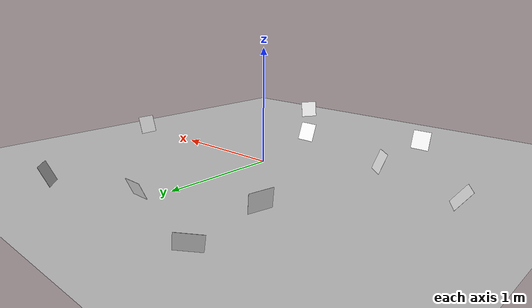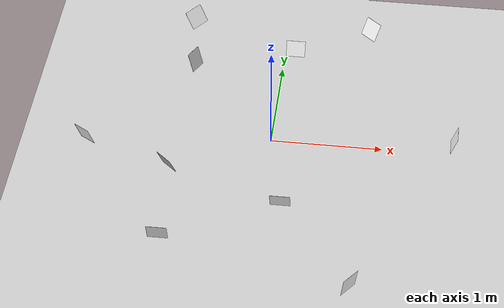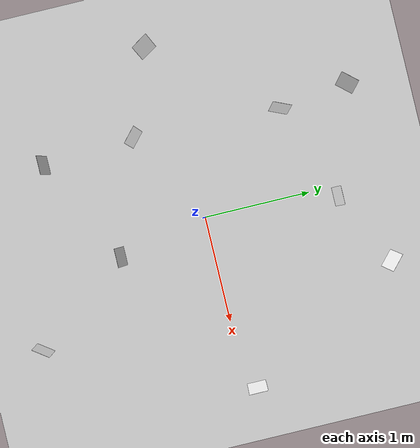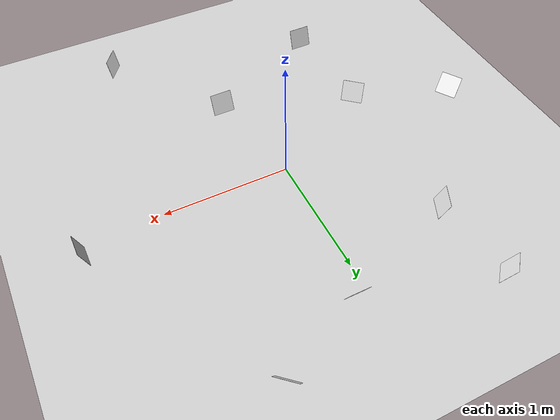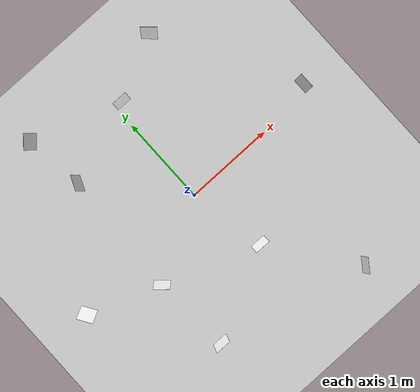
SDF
<sdf version="1.7">
 <world name="default">
  <physics name="normal" type="ode">
   <real_time_update_rate>1000</real_time_update_rate>
   <max_step_size>0.001</max_step_size>
   <real_time_factor>1</real_time_factor>
  </physics>
  <model name="ground_plane">
   <static>1</static>
   <link name="link">
    <collision name="collision">
     <geometry><plane><normal>0 0 1</normal><size>100 100</size></plane></geometry>
     <surface>
      <contact><collide_bitmask>65535</collide_bitmask></contact>
      <friction><ode><mu>100</mu><mu2>50</mu2></ode></friction>
     </surface>
    </collision>
    <visual name="visual">
     <cast_shadows>0</cast_shadows>
     <geometry><plane><normal>0 0 1</normal><size>100 100</size></plane></geometry>
     <material>
      <script><uri>file://media/materials/scripts/gazebo.material</uri><name>Gazebo/Grey</name></script>
     </material>
    </visual>
   </link>
  </model>
  <light name="sun" type="directional">
   <pose>0 0 10 0 -0 0</pose>
   <diffuse>0.8 0.8 0.8 1</diffuse>
   <specular>0.2 0.2 0.2 1</specular>
   <attenuation>
    <range>1000</range>
    <constant>0.9</constant>
    <linear>0.01</linear>
    <quadratic>0.001</quadratic>
   </attenuation>
   <direction>-0.5 0.1 -0.9</direction>
   <spot><inner_angle>0</inner_angle><outer_angle>0</outer_angle><falloff>0</falloff></spot>
  </light>
  <gravity>0 0 -9.8</gravity>
  <magnetic_field>6e-06 2.3e-05 -4.2e-05</magnetic_field>
  <atmosphere type="adiabatic"/>
  <scene><ambient>0.4 0.4 0.4 1</ambient><background>0.7 0.7 0.7 1</background><shadows>1</shadows></scene>
  <spherical_coordinates>
   <surface_model>EARTH_WGS84</surface_model>
   <latitude_deg>0</latitude_deg>
   <longitude_deg>0</longitude_deg>
   <elevation>0</elevation>
   <heading_deg>0</heading_deg>
  </spherical_coordinates>
  <model name="marker_28">
   <link name="marker">
    <visual name="visual">
     <geometry><box><size>0.1778 0.1778 1e-05</size></box></geometry>
     <material>
      <script>
       <uri>model://marker_28/materials/scripts</uri>
       <uri>model://marker_28/materials/textures</uri>
       <name>ArucoVisualMarker28/Marker</name>
      </script>
      <ambient>1 1 1 1</ambient>
      <diffuse>1 1 1 1</diffuse>
      <specular>0 0 0 1</specular>
      <emissive>1 1 1 0</emissive>
      <shader type="vertex"><normal_map>__default__</normal_map></shader>
     </material>
    </visual>
    <collision name="collision"><geometry><box><size>0.1778 0.1778 1e-05</size></box></geometry></collision>
   </link>
   <link name="marker_pad">
    <pose relative_to="marker">0 0 -0.001 0 -0 0</pose>
    <visual name="visual">
     <geometry><box><size>0.1778 0.1778 1e-05</size></box></geometry>
     <material>
      <lighting>1</lighting>
      <script><uri>file://media/materials/scripts/gazebo.material</uri><name>Gazebo/White</name></script>
      <ambient>0.3 0.3 0.3 1</ambient>
      <diffuse>0.7 0.7 0.7 1</diffuse>
      <specular>0.01 0.01 0.01 1</specular>
      <emissive>1 1 1 0</emissive>
      <shader type="vertex"><normal_map>__default__</normal_map></shader>
     </material>
    </visual>
    <collision name="collision"><geometry><box><size>0.1778 0.1778 1e-05</size></box></geometry></collision>
   </link>
   <joint name="marker_JOINT_marker_pad" type="revolute">
    <parent>marker</parent>
    <child>marker_pad</child>
    <axis>
     <xyz>0 0 1</xyz>
     <limit><upper>0</upper><lower>0</lower></limit>
     <dynamics><spring_reference>0</spring_reference><spring_stiffness>0</spring_stiffness></dynamics>
    </axis>
   </joint>
   <static>1</static>
   <pose>-0.875259 -0.469055 0.088226 0 1.17457 0.845229</pose>
  </model>
  <model name="marker_22">
   <link name="marker">
    <visual name="visual">
     <geometry><box><size>0.1778 0.1778 1e-05</size></box></geometry>
     <material>
      <script>
       <uri>model://marker_22/materials/scripts</uri>
       <uri>model://marker_22/materials/textures</uri>
       <name>ArucoVisualMarker22/Marker</name>
      </script>
      <ambient>1 1 1 1</ambient>
      <diffuse>1 1 1 1</diffuse>
      <specular>0 0 0 1</specular>
      <emissive>1 1 1 0</emissive>
      <shader type="vertex"><normal_map>__default__</normal_map></shader>
     </material>
    </visual>
    <collision name="collision"><geometry><box><size>0.1778 0.1778 1e-05</size></box></geometry></collision>
   </link>
   <link name="marker_pad">
    <pose relative_to="marker">0 0 -0.001 0 -0 0</pose>
    <visual name="visual">
     <geometry><box><size>0.1778 0.1778 1e-05</size></box></geometry>
     <material>
      <lighting>1</lighting>
      <script><uri>file://media/materials/scripts/gazebo.material</uri><name>Gazebo/White</name></script>
      <ambient>0.3 0.3 0.3 1</ambient>
      <diffuse>0.7 0.7 0.7 1</diffuse>
      <specular>0.01 0.01 0.01 1</specular>
      <emissive>1 1 1 0</emissive>
      <shader type="vertex"><normal_map>__default__</normal_map></shader>
     </material>
    </visual>
    <collision name="collision"><geometry><box><size>0.1778 0.1778 1e-05</size></box></geometry></collision>
   </link>
   <joint name="marker_JOINT_marker_pad" type="revolute">
    <parent>marker</parent>
    <child>marker_pad</child>
    <axis>
     <xyz>0 0 1</xyz>
     <limit><upper>0</upper><lower>0</lower></limit>
     <dynamics><spring_reference>0</spring_reference><spring_stiffness>0</spring_stiffness></dynamics>
    </axis>
   </joint>
   <static>1</static>
   <pose>-0.899922 1.55966 0.110069 0.223371 1.00394 -0.56863</pose>
  </model>
  <model name="marker_16">
   <link name="marker">
    <visual name="visual">
     <geometry><box><size>0.1778 0.1778 1e-05</size></box></geometry>
     <material>
      <script>
       <uri>model://marker_16/materials/scripts</uri>
       <uri>model://marker_16/materials/textures</uri>
       <name>ArucoVisualMarker16/Marker</name>
      </script>
      <ambient>1 1 1 1</ambient>
      <diffuse>1 1 1 1</diffuse>
      <specular>0 0 0 1</specular>
      <emissive>1 1 1 0</emissive>
      <shader type="vertex"><normal_map>__default__</normal_map></shader>
     </material>
    </visual>
    <collision name="collision"><geometry><box><size>0.1778 0.1778 1e-05</size></box></geometry></collision>
   </link>
   <link name="marker_pad">
    <pose relative_to="marker">0 0 -0.001 0 -0 0</pose>
    <visual name="visual">
     <geometry><box><size>0.1778 0.1778 1e-05</size></box></geometry>
     <material>
      <lighting>1</lighting>
      <script><uri>file://media/materials/scripts/gazebo.material</uri><name>Gazebo/White</name></script>
      <ambient>0.3 0.3 0.3 1</ambient>
      <diffuse>0.7 0.7 0.7 1</diffuse>
      <specular>0.01 0.01 0.01 1</specular>
      <emissive>1 1 1 0</emissive>
      <shader type="vertex"><normal_map>__default__</normal_map></shader>
     </material>
    </visual>
    <collision name="collision"><geometry><box><size>0.1778 0.1778 1e-05</size></box></geometry></collision>
   </link>
   <joint name="marker_JOINT_marker_pad" type="revolute">
    <parent>marker</parent>
    <child>marker_pad</child>
    <axis>
     <xyz>0 0 1</xyz>
     <limit><upper>0</upper><lower>0</lower></limit>
     <dynamics><spring_reference>0</spring_reference><spring_stiffness>0</spring_stiffness></dynamics>
    </axis>
   </joint>
   <static>1</static>
   <pose>0.094388 1.24003 0.050864 1.1329 -0 0</pose>
  </model>
  <model name="marker_23">
   <link name="marker">
    <visual name="visual">
     <geometry><box><size>0.1778 0.1778 1e-05</size></box></geometry>
     <material>
      <script>
       <uri>model://marker_23/materials/scripts</uri>
       <uri>model://marker_23/materials/textures</uri>
       <name>ArucoVisualMarker23/Marker</name>
      </script>
      <ambient>1 1 1 1</ambient>
      <diffuse>1 1 1 1</diffuse>
      <specular>0 0 0 1</specular>
      <emissive>1 1 1 0</emissive>
      <shader type="vertex"><normal_map>__default__</normal_map></shader>
     </material>
    </visual>
    <collision name="collision"><geometry><box><size>0.1778 0.1778 1e-05</size></box></geometry></collision>
   </link>
   <link name="marker_pad">
    <pose relative_to="marker">0 0 -0.001 0 -0 0</pose>
    <visual name="visual">
     <geometry><box><size>0.1778 0.1778 1e-05</size></box></geometry>
     <material>
      <lighting>1</lighting>
      <script><uri>file://media/materials/scripts/gazebo.material</uri><name>Gazebo/White</name></script>
      <ambient>0.3 0.3 0.3 1</ambient>
      <diffuse>0.7 0.7 0.7 1</diffuse>
      <specular>0.01 0.01 0.01 1</specular>
      <emissive>1 1 1 0</emissive>
      <shader type="vertex"><normal_map>__default__</normal_map></shader>
     </material>
    </visual>
    <collision name="collision"><geometry><box><size>0.1778 0.1778 1e-05</size></box></geometry></collision>
   </link>
   <joint name="marker_JOINT_marker_pad" type="revolute">
    <parent>marker</parent>
    <child>marker_pad</child>
    <axis>
     <xyz>0 0 1</xyz>
     <limit><upper>0</upper><lower>0</lower></limit>
     <dynamics><spring_reference>0</spring_reference><spring_stiffness>0</spring_stiffness></dynamics>
    </axis>
   </joint>
   <static>1</static>
   <pose>1.63655 0.103878 0.083594 0 -1.24465 0</pose>
  </model>
  <model name="marker_11">
   <link name="marker">
    <visual name="visual">
     <geometry><box><size>0.1778 0.1778 1e-05</size></box></geometry>
     <material>
      <script>
       <uri>model://marker_11/materials/scripts</uri>
       <uri>model://marker_11/materials/textures</uri>
       <name>ArucoVisualMarker11/Marker</name>
      </script>
      <ambient>1 1 1 1</ambient>
      <diffuse>1 1 1 1</diffuse>
      <specular>0 0 0 1</specular>
      <emissive>1 1 1 0</emissive>
      <shader type="vertex"><normal_map>__default__</normal_map></shader>
     </material>
    </visual>
    <collision name="collision"><geometry><box><size>0.1778 0.1778 1e-05</size></box></geometry></collision>
   </link>
   <link name="marker_pad">
    <pose relative_to="marker">0 0 -0.001 0 -0 0</pose>
    <visual name="visual">
     <geometry><box><size>0.1778 0.1778 1e-05</size></box></geometry>
     <material>
      <lighting>1</lighting>
      <script><uri>file://media/materials/scripts/gazebo.material</uri><name>Gazebo/White</name></script>
      <ambient>0.3 0.3 0.3 1</ambient>
      <diffuse>0.7 0.7 0.7 1</diffuse>
      <specular>0.01 0.01 0.01 1</specular>
      <emissive>1 1 1 0</emissive>
      <shader type="vertex"><normal_map>__default__</normal_map></shader>
     </material>
    </visual>
    <collision name="collision"><geometry><box><size>0.1778 0.1778 1e-05</size></box></geometry></collision>
   </link>
   <joint name="marker_JOINT_marker_pad" type="revolute">
    <parent>marker</parent>
    <child>marker_pad</child>
    <axis>
     <xyz>0 0 1</xyz>
     <limit><upper>0</upper><lower>0</lower></limit>
     <dynamics><spring_reference>0</spring_reference><spring_stiffness>0</spring_stiffness></dynamics>
    </axis>
   </joint>
   <static>1</static>
   <pose>-1.66548 -0.177626 0.079786 0 0.871194 0.563216</pose>
  </model>
  <model name="marker_14">
   <link name="marker">
    <visual name="visual">
     <geometry><box><size>0.1778 0.1778 1e-05</size></box></geometry>
     <material>
      <script>
       <uri>model://marker_14/materials/scripts</uri>
       <uri>model://marker_14/materials/textures</uri>
       <name>ArucoVisualMarker14/Marker</name>
      </script>
      <ambient>1 1 1 1</ambient>
      <diffuse>1 1 1 1</diffuse>
      <specular>0 0 0 1</specular>
      <emissive>1 1 1 0</emissive>
      <shader type="vertex"><normal_map>__default__</normal_map></shader>
     </material>
    </visual>
    <collision name="collision"><geometry><box><size>0.1778 0.1778 1e-05</size></box></geometry></collision>
   </link>
   <link name="marker_pad">
    <pose relative_to="marker">0 0 -0.001 0 -0 0</pose>
    <visual name="visual">
     <geometry><box><size>0.1778 0.1778 1e-05</size></box></geometry>
     <material>
      <lighting>1</lighting>
      <script><uri>file://media/materials/scripts/gazebo.material</uri><name>Gazebo/White</name></script>
      <ambient>0.3 0.3 0.3 1</ambient>
      <diffuse>0.7 0.7 0.7 1</diffuse>
      <specular>0.01 0.01 0.01 1</specular>
      <emissive>1 1 1 0</emissive>
      <shader type="vertex"><normal_map>__default__</normal_map></shader>
     </material>
    </visual>
    <collision name="collision"><geometry><box><size>0.1778 0.1778 1e-05</size></box></geometry></collision>
   </link>
   <joint name="marker_JOINT_marker_pad" type="revolute">
    <parent>marker</parent>
    <child>marker_pad</child>
    <axis>
     <xyz>0 0 1</xyz>
     <limit><upper>0</upper><lower>0</lower></limit>
     <dynamics><spring_reference>0</spring_reference><spring_stiffness>0</spring_stiffness></dynamics>
    </axis>
   </joint>
   <static>1</static>
   <pose>-0.814677 0.904652 0.130219 1.20997 0.114837 1.17429</pose>
  </model>
  <model name="marker_12">
   <link name="marker">
    <visual name="visual">
     <geometry><box><size>0.1778 0.1778 1e-05</size></box></geometry>
     <material>
      <script>
       <uri>model://marker_12/materials/scripts</uri>
       <uri>model://marker_12/materials/textures</uri>
       <name>ArucoVisualMarker12/Marker</name>
      </script>
      <ambient>1 1 1 1</ambient>
      <diffuse>1 1 1 1</diffuse>
      <specular>0 0 0 1</specular>
      <emissive>1 1 1 0</emissive>
      <shader type="vertex"><normal_map>__default__</normal_map></shader>
     </material>
    </visual>
    <collision name="collision"><geometry><box><size>0.1778 0.1778 1e-05</size></box></geometry></collision>
   </link>
   <link name="marker_pad">
    <pose relative_to="marker">0 0 -0.001 0 -0 0</pose>
    <visual name="visual">
     <geometry><box><size>0.1778 0.1778 1e-05</size></box></geometry>
     <material>
      <lighting>1</lighting>
      <script><uri>file://media/materials/scripts/gazebo.material</uri><name>Gazebo/White</name></script>
      <ambient>0.3 0.3 0.3 1</ambient>
      <diffuse>0.7 0.7 0.7 1</diffuse>
      <specular>0.01 0.01 0.01 1</specular>
      <emissive>1 1 1 0</emissive>
      <shader type="vertex"><normal_map>__default__</normal_map></shader>
     </material>
    </visual>
    <collision name="collision"><geometry><box><size>0.1778 0.1778 1e-05</size></box></geometry></collision>
   </link>
   <joint name="marker_JOINT_marker_pad" type="revolute">
    <parent>marker</parent>
    <child>marker_pad</child>
    <axis>
     <xyz>0 0 1</xyz>
     <limit><upper>0</upper><lower>0</lower></limit>
     <dynamics><spring_reference>0</spring_reference><spring_stiffness>0</spring_stiffness></dynamics>
    </axis>
   </joint>
   <static>1</static>
   <pose>0.840987 -1.73501 0.093381 -1.43499 0.024132 0.934283</pose>
  </model>
  <model name="marker_15">
   <link name="marker">
    <visual name="visual">
     <geometry><box><size>0.1778 0.1778 1e-05</size></box></geometry>
     <material>
      <script>
       <uri>model://marker_15/materials/scripts</uri>
       <uri>model://marker_15/materials/textures</uri>
       <name>ArucoVisualMarker15/Marker</name>
      </script>
      <ambient>1 1 1 1</ambient>
      <diffuse>1 1 1 1</diffuse>
      <specular>0 0 0 1</specular>
      <emissive>1 1 1 0</emissive>
      <shader type="vertex"><normal_map>__default__</normal_map></shader>
     </material>
    </visual>
    <collision name="collision"><geometry><box><size>0.1778 0.1778 1e-05</size></box></geometry></collision>
   </link>
   <link name="marker_pad">
    <pose relative_to="marker">0 0 -0.001 0 -0 0</pose>
    <visual name="visual">
     <geometry><box><size>0.1778 0.1778 1e-05</size></box></geometry>
     <material>
      <lighting>1</lighting>
      <script><uri>file://media/materials/scripts/gazebo.material</uri><name>Gazebo/White</name></script>
      <ambient>0.3 0.3 0.3 1</ambient>
      <diffuse>0.7 0.7 0.7 1</diffuse>
      <specular>0.01 0.01 0.01 1</specular>
      <emissive>1 1 1 0</emissive>
      <shader type="vertex"><normal_map>__default__</normal_map></shader>
     </material>
    </visual>
    <collision name="collision"><geometry><box><size>0.1778 0.1778 1e-05</size></box></geometry></collision>
   </link>
   <joint name="marker_JOINT_marker_pad" type="revolute">
    <parent>marker</parent>
    <child>marker_pad</child>
    <axis>
     <xyz>0 0 1</xyz>
     <limit><upper>0</upper><lower>0</lower></limit>
     <dynamics><spring_reference>0</spring_reference><spring_stiffness>0</spring_stiffness></dynamics>
    </axis>
   </joint>
   <static>1</static>
   <pose>0.171085 -0.839485 0.08701 -1.20447 0 0</pose>
  </model>
  <model name="marker_29">
   <link name="marker">
    <visual name="visual">
     <geometry><box><size>0.1778 0.1778 1e-05</size></box></geometry>
     <material>
      <script>
       <uri>model://marker_29/materials/scripts</uri>
       <uri>model://marker_29/materials/textures</uri>
       <name>ArucoVisualMarker29/Marker</name>
      </script>
      <ambient>1 1 1 1</ambient>
      <diffuse>1 1 1 1</diffuse>
      <specular>0 0 0 1</specular>
      <emissive>1 1 1 0</emissive>
      <shader type="vertex"><normal_map>__default__</normal_map></shader>
     </material>
    </visual>
    <collision name="collision"><geometry><box><size>0.1778 0.1778 1e-05</size></box></geometry></collision>
   </link>
   <link name="marker_pad">
    <pose relative_to="marker">0 0 -0.001 0 -0 0</pose>
    <visual name="visual">
     <geometry><box><size>0.1778 0.1778 1e-05</size></box></geometry>
     <material>
      <lighting>1</lighting>
      <script><uri>file://media/materials/scripts/gazebo.material</uri><name>Gazebo/White</name></script>
      <ambient>0.3 0.3 0.3 1</ambient>
      <diffuse>0.7 0.7 0.7 1</diffuse>
      <specular>0.01 0.01 0.01 1</specular>
      <emissive>1 1 1 0</emissive>
      <shader type="vertex"><normal_map>__default__</normal_map></shader>
     </material>
    </visual>
    <collision name="collision"><geometry><box><size>0.1778 0.1778 1e-05</size></box></geometry></collision>
   </link>
   <joint name="marker_JOINT_marker_pad" type="revolute">
    <parent>marker</parent>
    <child>marker_pad</child>
    <axis>
     <xyz>0 0 1</xyz>
     <limit><upper>0</upper><lower>0</lower></limit>
     <dynamics><spring_reference>0</spring_reference><spring_stiffness>0</spring_stiffness></dynamics>
    </axis>
   </joint>
   <static>1</static>
   <pose>-0.820122 -1.3363 0.087657 -1.28396 0 0</pose>
  </model>
  <model name="marker_7">
   <link name="marker">
    <visual name="visual">
     <geometry><box><size>0.1778 0.1778 1e-05</size></box></geometry>
     <material>
      <script>
       <uri>model://marker_7/materials/scripts</uri>
       <uri>model://marker_7/materials/textures</uri>
       <name>ArucoVisualMarker7/Marker</name>
      </script>
      <ambient>1 1 1 1</ambient>
      <diffuse>1 1 1 1</diffuse>
      <specular>0 0 0 1</specular>
      <emissive>1 1 1 0</emissive>
      <shader type="vertex"><normal_map>__default__</normal_map></shader>
     </material>
    </visual>
    <collision name="collision"><geometry><box><size>0.1778 0.1778 1e-05</size></box></geometry></collision>
   </link>
   <link name="marker_pad">
    <pose relative_to="marker">0 0 -0.001 0 -0 0</pose>
    <visual name="visual">
     <geometry><box><size>0.1778 0.1778 1e-05</size></box></geometry>
     <material>
      <lighting>1</lighting>
      <script><uri>file://media/materials/scripts/gazebo.material</uri><name>Gazebo/White</name></script>
      <ambient>0.3 0.3 0.3 1</ambient>
      <diffuse>0.7 0.7 0.7 1</diffuse>
      <specular>0.01 0.01 0.01 1</specular>
      <emissive>1 1 1 0</emissive>
      <shader type="vertex"><normal_map>__default__</normal_map></shader>
     </material>
    </visual>
    <collision name="collision"><geometry><box><size>0.1778 0.1778 1e-05</size></box></geometry></collision>
   </link>
   <joint name="marker_JOINT_marker_pad" type="revolute">
    <parent>marker</parent>
    <child>marker_pad</child>
    <axis>
     <xyz>0 0 1</xyz>
     <limit><upper>0</upper><lower>0</lower></limit>
     <dynamics><spring_reference>0</spring_reference><spring_stiffness>0</spring_stiffness></dynamics>
    </axis>
   </joint>
   <static>1</static>
   <pose>0.786256 1.5836 0.092678 1.10534 -0 -0.735875</pose>
  </model>
 </world>
</sdf>
